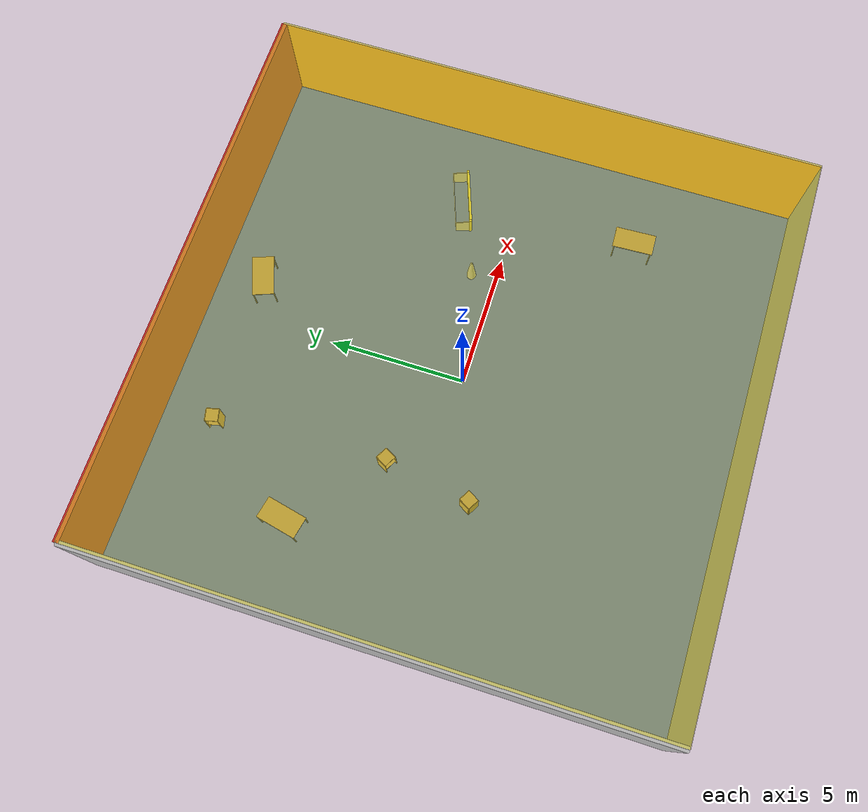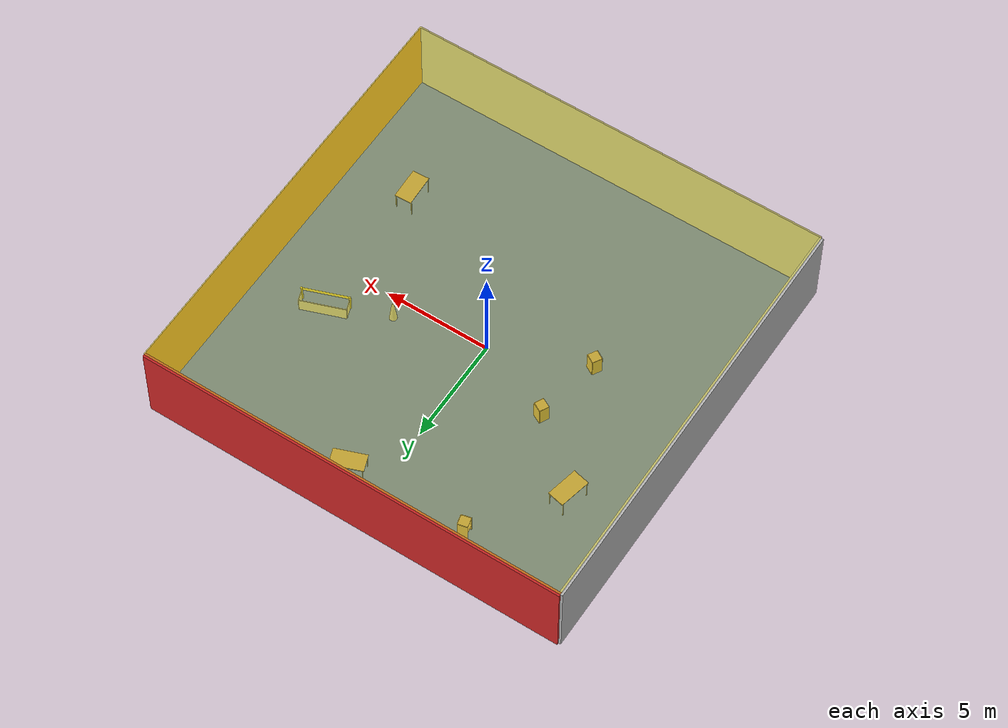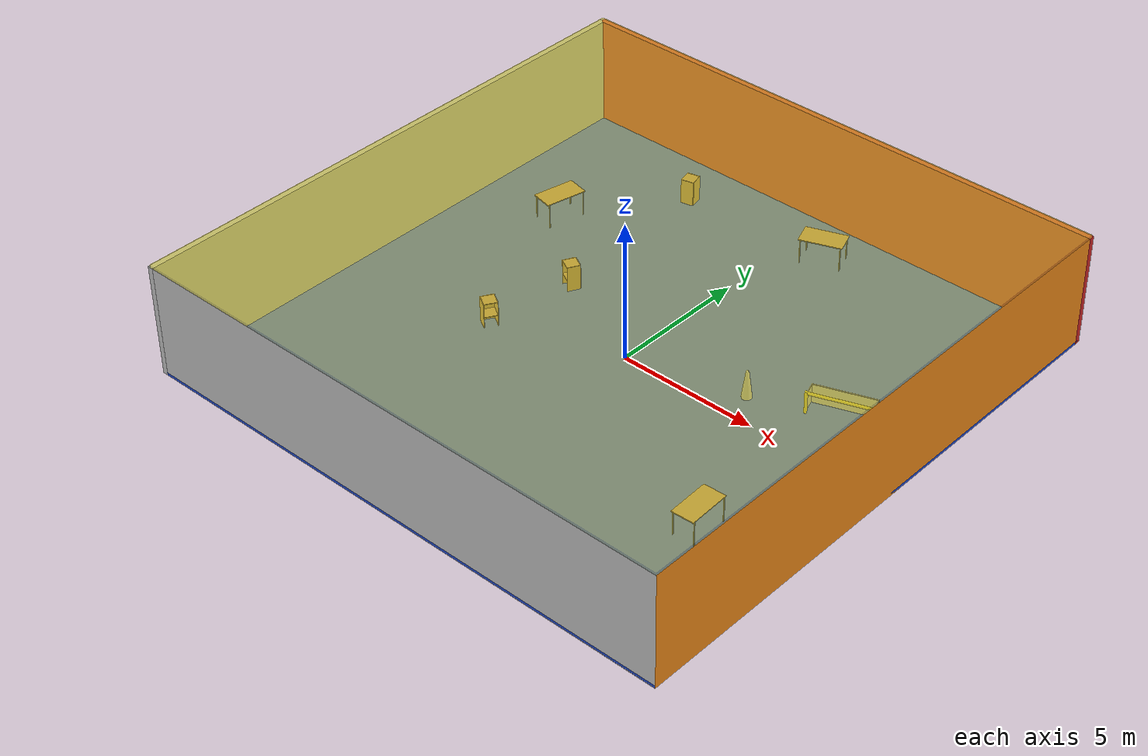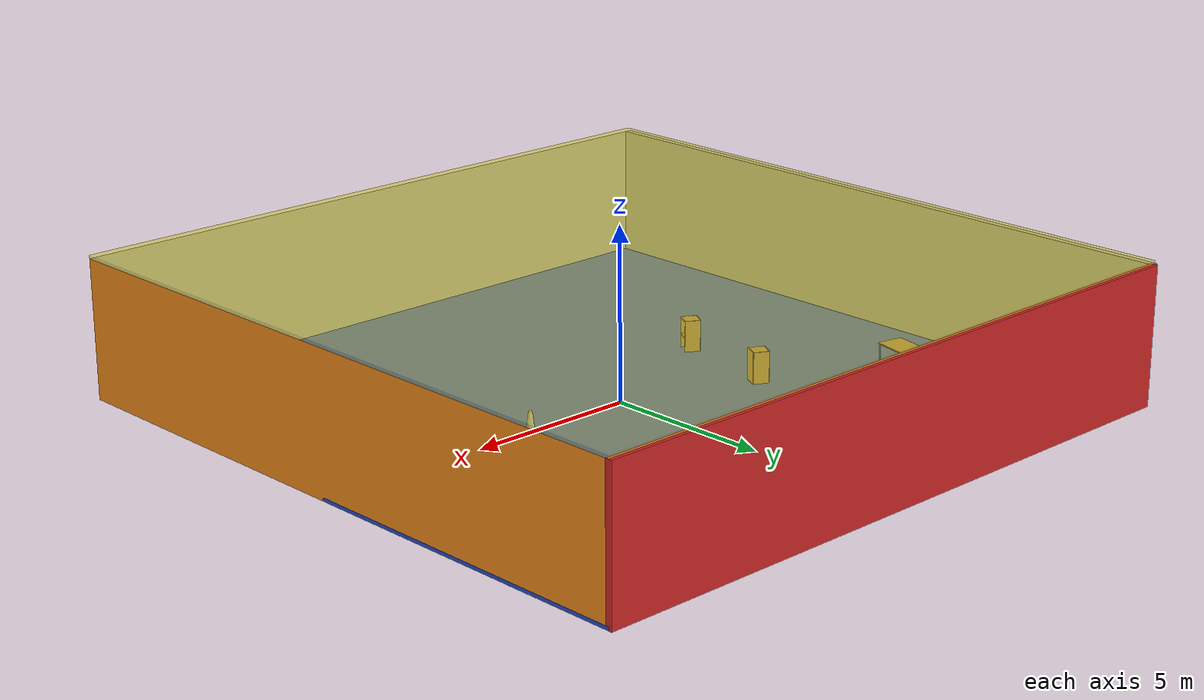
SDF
<sdf version="1.4">
 <world name="default">
  <physics type="ode">
   <max_step_size>0.001</max_step_size>
   <real_time_factor>1</real_time_factor>
   <real_time_update_rate>1000</real_time_update_rate>
   <gravity>0 0 -9.8</gravity>
  </physics>
  <scene><ambient>0.4 0.4 0.4 1</ambient><background>0.7 0.7 0.7 1</background><shadows>1</shadows></scene>
  <model name="Surrounding">
   <static>1</static>
   <link name="Ceiling">
    <collision name="Ceiling_Collision"><geometry><box><size>20 20 0.1</size></box></geometry></collision>
    <visual name="Ceiling_Visual">
     <geometry><box><size>20 20 0.1</size></box></geometry>
     <material>
      <script>
       <uri>file://media/materials/scripts/gazebo.material</uri>
       <name>Gazebo/YellowTransparent</name>
      </script>
     </material>
    </visual>
    <pose>0 0 4.05 0 0 0</pose>
   </link>
   <link name="Wall_South">
    <collision name="Wall_South_Collision">
     <geometry><box><size>20 0 4</size></box></geometry>
     <pose>0 0 2 0 -0 0</pose>
    </collision>
    <visual name="Wall_South_Visual">
     <pose>0 0 2 0 -0 0</pose>
     <geometry><box><size>20 0 4</size></box></geometry>
     <material>
      <script><uri>file://media/materials/scripts/gazebo.material</uri><name>Gazebo/LightOn</name></script>
     </material>
    </visual>
    <velocity_decay><linear>0</linear><angular>0</angular></velocity_decay>
    <pose>0 -10 0 0 -0 0</pose>
   </link>
   <link name="Wall_East">
    <collision name="Wall_21_Collision">
     <geometry><box><size>20 0 4</size></box></geometry>
     <pose>0 0 2 0 -0 0</pose>
    </collision>
    <visual name="Wall_21_Visual">
     <pose>0 0 2 0 -0 0</pose>
     <geometry><box><size>20 0 4</size></box></geometry>
     <material>
      <script><uri>file://media/materials/scripts/gazebo.material</uri><name>Gazebo/Orange</name></script>
     </material>
    </visual>
    <velocity_decay><linear>0</linear><angular>0</angular></velocity_decay>
    <pose>10 0 0 0 -0 1.5708</pose>
   </link>
   <link name="Wall_North">
    <collision name="Wall_22_Collision">
     <geometry><box><size>20 0.2 4</size></box></geometry>
     <pose>0 0 2 0 -0 0</pose>
    </collision>
    <visual name="Wall_22_Visual">
     <pose>0 0 2 0 -0 0</pose>
     <geometry><box><size>20 0.2 4</size></box></geometry>
     <material>
      <script><uri>file://media/materials/scripts/gazebo.material</uri><name>Gazebo/RedBright</name></script>
     </material>
    </visual>
    <velocity_decay><linear>0</linear><angular>0</angular></velocity_decay>
    <pose>0 10 0 0 -0 0</pose>
   </link>
   <link name="Wall_West">
    <collision name="Wall_23_Collision">
     <geometry><box><size>20 0.2 4</size></box></geometry>
     <pose>0 0 2 0 -0 0</pose>
    </collision>
    <visual name="Wall_23_Visual">
     <pose>0 0 2 0 -0 0</pose>
     <geometry><box><size>20 0.2 4</size></box></geometry>
     <material>
      <script><uri>file://media/materials/scripts/gazebo.material</uri><name>Gazebo/Pioneer2Body</name></script>
     </material>
    </visual>
    <velocity_decay><linear>0</linear><angular>0</angular></velocity_decay>
    <pose>-10 0 0 0 0 -1.5708</pose>
   </link>
   <link name="Ground_link">
    <collision name="collision">
     <pose>0 0 .05 0 -0 0</pose>
     <geometry><box><size>20 20 0.1</size></box></geometry>
    </collision>
    <visual name="visual">
     <pose>0 0 .05 0 -0 0</pose>
     <geometry><box><size>20 20 0.1</size></box></geometry>
     <material>
      <script><uri>file://media/materials/scripts/gazebo.material</uri><name>Gazebo/Blue</name></script>
     </material>
    </visual>
   </link>
   <static>1</static>
  </model>
  <spherical_coordinates>
   <surface_model>EARTH_WGS84</surface_model>
   <latitude_deg>0</latitude_deg>
   <longitude_deg>0</longitude_deg>
   <elevation>0</elevation>
   <heading_deg>0</heading_deg>
  </spherical_coordinates>
  <light name="lightball_0" type="diffuse">
   <diffuse>0.8 0.8 0.8 1</diffuse>
   <specular>0.2 0.2 0.2 1</specular>
   <attenuation>
    <range>100</range>
    <constant>0.7</constant>
    <linear>0.01</linear>
    <quadratic>0.001</quadratic>
   </attenuation>
   <direction>-0.5 0.1 -0.9</direction>
   <pose>-5.69399138864 -9.61940304723 3.29562941621 0 0 0</pose>
  </light>
  <light name="lightball_1" type="diffuse">
   <diffuse>0.8 0.8 0.8 1</diffuse>
   <specular>0.2 0.2 0.2 1</specular>
   <attenuation>
    <range>100</range>
    <constant>0.7</constant>
    <linear>0.01</linear>
    <quadratic>0.001</quadratic>
   </attenuation>
   <direction>-0.5 0.1 -0.9</direction>
   <pose>6.00967634269 0.635926703162 1.1480112802 0 0 0</pose>
  </light>
  <light name="lightball_2" type="diffuse">
   <diffuse>0.8 0.8 0.8 1</diffuse>
   <specular>0.2 0.2 0.2 1</specular>
   <attenuation>
    <range>100</range>
    <constant>0.7</constant>
    <linear>0.01</linear>
    <quadratic>0.001</quadratic>
   </attenuation>
   <direction>-0.5 0.1 -0.9</direction>
   <pose>1.46505966558 -8.92198010467 0.895344788208 0 0 0</pose>
  </light>
  <light name="lightball_3" type="diffuse">
   <diffuse>0.8 0.8 0.8 1</diffuse>
   <specular>0.2 0.2 0.2 1</specular>
   <attenuation>
    <range>100</range>
    <constant>0.7</constant>
    <linear>0.01</linear>
    <quadratic>0.001</quadratic>
   </attenuation>
   <direction>-0.5 0.1 -0.9</direction>
   <pose>-6.73969129981 5.29561619712 0.874007816221 0 0 0</pose>
  </light>
  <light name="lightball_4" type="diffuse">
   <diffuse>0.8 0.8 0.8 1</diffuse>
   <specular>0.2 0.2 0.2 1</specular>
   <attenuation>
    <range>100</range>
    <constant>0.7</constant>
    <linear>0.01</linear>
    <quadratic>0.001</quadratic>
   </attenuation>
   <direction>-0.5 0.1 -0.9</direction>
   <pose>9.97747905079 4.45161677916 2.71502842926 0 0 0</pose>
  </light>
  <light name="lightball_5" type="diffuse">
   <diffuse>0.8 0.8 0.8 1</diffuse>
   <specular>0.2 0.2 0.2 1</specular>
   <attenuation>
    <range>100</range>
    <constant>0.7</constant>
    <linear>0.01</linear>
    <quadratic>0.001</quadratic>
   </attenuation>
   <direction>-0.5 0.1 -0.9</direction>
   <pose>-0.0362271822549 -4.71947806321 3.7027303897 0 0 0</pose>
  </light>
  <light name="lightball_6" type="diffuse">
   <diffuse>0.8 0.8 0.8 1</diffuse>
   <specular>0.2 0.2 0.2 1</specular>
   <attenuation>
    <range>100</range>
    <constant>0.7</constant>
    <linear>0.01</linear>
    <quadratic>0.001</quadratic>
   </attenuation>
   <direction>-0.5 0.1 -0.9</direction>
   <pose>7.07941222251 -8.62828018546 0.826588001256 0 0 0</pose>
  </light>
  <light name="lightball_7" type="diffuse">
   <diffuse>0.8 0.8 0.8 1</diffuse>
   <specular>0.2 0.2 0.2 1</specular>
   <attenuation>
    <range>100</range>
    <constant>0.7</constant>
    <linear>0.01</linear>
    <quadratic>0.001</quadratic>
   </attenuation>
   <direction>-0.5 0.1 -0.9</direction>
   <pose>1.44192087279 -6.73361785336 2.18915875654 0 0 0</pose>
  </light>
  <include><uri>model://table</uri><pose>-6.79533905668 4.30885675126 0 0 0 1.35640288667</pose></include>
  <include><uri>model://cabinet</uri><pose>-4.31912819359 -1.58760645879 0 0 0 2.61257628709</pose></include>
  <include><uri>model://cabinet</uri><pose>-3.75366356003 1.59500477156 0 0 0 1.08573344807</pose></include>
  <include><uri>model://cabinet</uri><pose>-4.13279032626 7.9072968132 0 0 0 0.226156845485</pose></include>
  <include><uri>model://table</uri><pose>1.39662226611 8.11109080499 0 0 0 0.35415140033</pose></include>
  <include>
   <uri>model://construction_cone</uri>
   <pose>4.09529403143 0.927436878269 0 0 0 0.572403895613</pose>
  </include>
  <include><uri>model://table</uri><pose>6.83679432483 -4.55739523089 0 0 0 1.61234118696</pose></include>
  <include>
   <uri>model://robocup_3Dsim_goal</uri>
   <pose>6.86916511181 1.87380436479 0 0 0 1.9170053169</pose>
  </include>
 </world>
</sdf>

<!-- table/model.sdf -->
<sdf version="1.5">
  <model name="table">
    <static>true</static>
    <link name="link">
      <collision name="surface">
        <pose>0 0 1.0 0 0 0</pose>
        <geometry>
          <box>
            <size>1.5 0.8 0.03</size>
          </box>
        </geometry>
        <surface>
          <friction>
            <ode>
              <mu>0.6</mu>
              <mu2>0.6</mu2>
            </ode>
          </friction>
        </surface>
      </collision>
      <visual name="visual1">
        <pose>0 0 1.0 0 0 0</pose>
        <geometry>
          <box>
            <size>1.5 0.8 0.03</size>
          </box>
        </geometry>
        <material>
          <script>
            <uri>model://media/materials/scripts/gazebo.material</uri>
            <name>Gazebo/Wood</name>
          </script>
        </material>
      </visual>
      <collision name="front_left_leg">
        <pose>0.68 0.38 0.5 0 0 0</pose>
        <geometry>
          <cylinder>
            <radius>0.02</radius>
            <length>1.0</length>
          </cylinder>
        </geometry>
      </collision>
      <visual name="front_left_leg">
        <pose>0.68 0.38 0.5 0 0 0</pose>
        <geometry>
          <cylinder>
            <radius>0.02</radius>
            <length>1.0</length>
          </cylinder>
        </geometry>
        <material>
          <script>
            <uri>model://media/materials/scripts/gazebo.material</uri>
            <name>Gazebo/Grey</name>
          </script>
        </material>
      </visual>
      <collision name="front_right_leg">
        <pose>0.68 -0.38 0.5 0 0 0</pose>
        <geometry>
          <cylinder>
            <radius>0.02</radius>
            <length>1.0</length>
          </cylinder>
        </geometry>
      </collision>
      <visual name="front_right_leg">
        <pose>0.68 -0.38 0.5 0 0 0</pose>
        <geometry>
          <cylinder>
            <radius>0.02</radius>
            <length>1.0</length>
          </cylinder>
        </geometry>
        <material>
          <script>
            <uri>model://media/materials/scripts/gazebo.material</uri>
            <name>Gazebo/Grey</name>
          </script>
        </material>
      </visual>
      <collision name="back_right_leg">
        <pose>-0.68 -0.38 0.5 0 0 0</pose>
        <geometry>
          <cylinder>
            <radius>0.02</radius>
            <length>1.0</length>
          </cylinder>
        </geometry>
      </collision>
      <visual name="back_right_leg">
        <pose>-0.68 -0.38 0.5 0 0 0</pose>
        <geometry>
          <cylinder>
            <radius>0.02</radius>
            <length>1.0</length>
          </cylinder>
        </geometry>
        <material>
          <script>
            <uri>model://media/materials/scripts/gazebo.material</uri>
            <name>Gazebo/Grey</name>
          </script>
        </material>
      </visual>
      <collision name="back_left_leg">
        <pose>-0.68 0.38 0.5 0 0 0</pose>
        <geometry>
          <cylinder>
            <radius>0.02</radius>
            <length>1.0</length>
          </cylinder>
        </geometry>
      </collision>
      <visual name="back_left_leg">
        <pose>-0.68 0.38 0.5 0 0 0</pose>
        <geometry>
          <cylinder>
            <radius>0.02</radius>
            <length>1.0</length>
          </cylinder>
        </geometry>
        <material>
          <script>
            <uri>model://media/materials/scripts/gazebo.material</uri>
            <name>Gazebo/Grey</name>
          </script>
        </material>
      </visual>
    </link>
  </model>
</sdf>

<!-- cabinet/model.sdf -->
<sdf version="1.5">
  <model name="cabinet">
    <static>true</static>
    <link name="cabinet_bottom_plate">
      <inertial>
        <pose>0 0 -1 0 0 0</pose>
        <inertia>
          <ixx>2.050000</ixx>
          <ixy>0</ixy>
          <ixz>0</ixz>
          <iyy>2.050000</iyy>
          <iyz>0</iyz>
          <izz>2.050000</izz>
        </inertia>
        <mass>25.000000</mass>
      </inertial>
      <collision name="cabinet_bottom_plate_geom">
        <pose>0 0 0.010000 0 0 0</pose>
        <geometry>
          <box>
            <size>0.450000 0.450000 0.020000</size>
          </box>
        </geometry>
      </collision>
      <visual name="cabinet_bottom_plate_geom_visual">
        <pose>0 0 0.010000 0 0 0</pose>
        <geometry>
          <box>
            <size>0.450000 0.450000 0.020000</size>
          </box>
        </geometry>
        <material>
          <script>
            <uri>model://media/materials/scripts/gazebo.material</uri>
            <name>Gazebo/Wood</name>
          </script>
        </material>
      </visual>
      <collision name="cabinet_bottom_plate_geom_cabinet_back_plate">
        <pose>0.235000 0 0.510000 0 0 0</pose>
        <geometry>
          <box>
            <size>0.020000 0.450000 1.020000</size>
          </box>
        </geometry>
      </collision>
      <visual name="cabinet_bottom_plate_geom_cabinet_back_plate_visual">
        <pose>0.235000 0 0.510000 0 0 0</pose>
        <geometry>
          <box>
            <size>0.020000 0.450000 1.020000</size>
          </box>
        </geometry>
        <material>
          <script>
            <uri>model://media/materials/scripts/gazebo.material</uri>
            <name>Gazebo/Wood</name>
          </script>
        </material>
      </visual>
      <collision name="cabinet_bottom_plate_geom_cabinet_left_plate">
        <pose>0 0.235000 0.510000 0 0 0</pose>
        <geometry>
          <box>
            <size>0.450000 0.020000 1.020000</size>
          </box>
        </geometry>
      </collision>
      <visual name="cabinet_bottom_plate_geom_cabinet_left_plate_visual">
        <pose>0 0.235000 0.510000 0 0 0</pose>
        <geometry>
          <box>
            <size>0.450000 0.020000 1.020000</size>
          </box>
        </geometry>
        <material>
          <script>
            <uri>model://media/materials/scripts/gazebo.material</uri>
            <name>Gazebo/Wood</name>
          </script>
        </material>
      </visual>
      <collision name="cabinet_bottom_plate_geom_cabinet_middle_plate">
        <pose>0 0 0.510000 0 0 0</pose>
        <geometry>
          <box>
            <size>0.450000 0.450000 0.020000</size>
          </box>
        </geometry>
      </collision>
      <visual name="cabinet_bottom_plate_geom_cabinet_middle_plate_visual">
        <pose>0 0 0.510000 0 0 0</pose>
        <geometry>
          <box>
            <size>0.450000 0.450000 0.020000</size>
          </box>
        </geometry>
        <material>
          <script>
            <uri>model://media/materials/scripts/gazebo.material</uri>
            <name>Gazebo/Wood</name>
          </script>
        </material>
      </visual>
      <collision name="cabinet_bottom_plate_geom_cabinet_right_plate">
        <pose>0 -0.235000 0.510000 0 0 0</pose>
        <geometry>
          <box>
            <size>0.450000 0.020000 1.020000</size>
          </box>
        </geometry>
      </collision>
      <visual name="cabinet_bottom_plate_geom_cabinet_right_plate_visual">
        <pose>0 -0.235000 0.510000 0 0 0</pose>
        <geometry>
          <box>
            <size>0.450000 0.020000 1.020000</size>
          </box>
        </geometry>
        <material>
          <script>
            <uri>model://media/materials/scripts/gazebo.material</uri>
            <name>Gazebo/Wood</name>
          </script>
        </material>
      </visual>
      <collision name="cabinet_bottom_plate_geom_cabinet_top_plate">
        <pose>0 0 1.010000 0 0 0</pose>
        <geometry>
          <box>
            <size>0.450000 0.450000 0.020000</size>
          </box>
        </geometry>
      </collision>
      <visual name="cabinet_bottom_plate_geom_cabinet_top_plate_visual">
        <pose>0 0 1.010000 0 0 0</pose>
        <geometry>
          <box>
            <size>0.450000 0.450000 0.020000</size>
          </box>
        </geometry>
        <material>
          <script>
            <uri>model://media/materials/scripts/gazebo.material</uri>
            <name>Gazebo/Wood</name>
          </script>
        </material>
      </visual>
    </link>
  </model>
</sdf>

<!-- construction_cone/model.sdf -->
<sdf version="1.5">
  <model name="Construction Cone">
    <link name="link">
      <collision name="collision">
        <geometry>
          <mesh>
            <scale>10 10 10</scale>
            <uri>file://isr-testbed/construction_cone/meshes/construction_cone.dae</uri>
          </mesh>
        </geometry>
      </collision>
      <visual name="visual">
        <geometry>
          <mesh>
            <scale>10 10 10</scale>
            <uri>file://isr-testbed/construction_cone/meshes/construction_cone.dae</uri>
          </mesh>
        </geometry>
      </visual>
    </link>
  </model>
</sdf>

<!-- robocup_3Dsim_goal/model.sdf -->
<sdf version="1.5">
  <model name="robocup_3d_goal">
    <static>true</static>
    <link name="left_post">
      <pose>0 1.05 0.45 0 0 0</pose>
      <collision name="collision">
        <geometry>
          <cylinder>
            <radius>0.05</radius>
            <length>0.9</length>
          </cylinder>
        </geometry>
      </collision>
      <visual name="visual">
        <geometry>
          <cylinder>
            <radius>0.05</radius>
            <length>0.9</length>
          </cylinder>
        </geometry>
        <material>
          <script>
            <uri>file://media/materials/scripts/gazebo.material</uri>
            <name>Gazebo/ZincYellow</name>
          </script>
        </material>
      </visual>
    </link>
    <link name="left_support_horiz_lower">
      <pose>0.30 1.05 0.01 0 0 0</pose>
      <collision name="collision">
        <geometry>
          <box>
            <size>0.50 0.02 0.02</size>
          </box>
        </geometry>
      </collision>
      <visual name="visual">
        <geometry>
          <box>
            <size>0.50 0.02 0.02</size>
          </box>
        </geometry>
        <material>
          <script>
            <uri>file://media/materials/scripts/gazebo.material</uri>
            <name>Gazebo/White</name>
          </script>
        </material>
      </visual>
    </link>
    <link name="left_support_horiz_upper">
      <pose>0.30 1.05 0.79 0 0 0</pose>
      <collision name="collision">
        <geometry>
          <box>
            <size>0.50 0.02 0.02</size>
          </box>
        </geometry>
      </collision>
      <visual name="visual">
        <geometry>
          <box>
            <size>0.50 0.02 0.02</size>
          </box>
        </geometry>
        <material>
          <script>
            <uri>file://media/materials/scripts/gazebo.material</uri>
            <name>Gazebo/White</name>
          </script>
        </material>
      </visual>
    </link>
    <link name="left_support_vertical">
      <pose>0.56 1.05 0.4 0 1.5708 0</pose>
      <collision name="collision">
        <geometry>
          <box>
            <size>0.80 0.02 0.02</size>
          </box>
        </geometry>
      </collision>
      <visual name="visual">
        <geometry>
          <box>
            <size>0.80 0.02 0.02</size>
          </box>
        </geometry>
        <material>
          <script>
            <uri>file://media/materials/scripts/gazebo.material</uri>
            <name>Gazebo/White</name>
          </script>
        </material>
      </visual>
    </link>
    <link name="right_support_horiz_lower">
      <pose>0.30 -1.05 0.01 0 0 0</pose>
      <collision name="collision">
        <geometry>
          <box>
            <size>0.50 0.02 0.02</size>
          </box>
        </geometry>
      </collision>
      <visual name="visual">
        <geometry>
          <box>
            <size>0.50 0.02 0.02</size>
          </box>
        </geometry>
        <material>
          <script>
            <uri>file://media/materials/scripts/gazebo.material</uri>
            <name>Gazebo/White</name>
          </script>
        </material>
      </visual>
    </link>
    <link name="right_support_horiz_upper">
      <pose>0.30 -1.05 0.79 0 0 0</pose>
      <collision name="collision">
        <geometry>
          <box>
            <size>0.50 0.02 0.02</size>
          </box>
        </geometry>
      </collision>
      <visual name="visual">
        <geometry>
          <box>
            <size>0.50 0.02 0.02</size>
          </box>
        </geometry>
        <material>
          <script>
            <uri>file://media/materials/scripts/gazebo.material</uri>
            <name>Gazebo/White</name>
          </script>
        </material>
      </visual>
    </link>
    <link name="right_support_vertical">
      <pose>0.56 -1.05 0.4 0 1.5708 0</pose>
      <collision name="collision">
        <geometry>
          <box>
            <size>0.80 0.02 0.02</size>
          </box>
        </geometry>
      </collision>
      <visual name="visual">
        <geometry>
          <box>
            <size>0.80 0.02 0.02</size>
          </box>
        </geometry>
        <material>
          <script>
            <uri>file://media/materials/scripts/gazebo.material</uri>
            <name>Gazebo/White</name>
          </script>
        </material>
      </visual>
    </link>
    <link name="center_support_horiz_lower">
      <pose>0.56 0 0.01 0 1.5708 0</pose>
      <collision name="collision">
        <geometry>
          <box>
            <size>0.02 2.08 0.02</size>
          </box>
        </geometry>
      </collision>
      <visual name="visual">
        <geometry>
          <box>
            <size>0.02 2.08 0.02</size>
          </box>
        </geometry>
        <material>
          <script>
            <uri>file://media/materials/scripts/gazebo.material</uri>
            <name>Gazebo/White</name>
          </script>
        </material>
      </visual>
    </link>
    <link name="center_support_horiz_upper">
      <pose>0.56 0 0.79 0 1.5708 0</pose>
      <collision name="collision">
        <geometry>
          <box>
            <size>0.02 2.08 0.02</size>
          </box>
        </geometry>
      </collision>
      <visual name="visual">
        <geometry>
          <box>
            <size>0.02 2.08 0.02</size>
          </box>
        </geometry>
        <material>
          <script>
            <uri>file://media/materials/scripts/gazebo.material</uri>
            <name>Gazebo/White</name>
          </script>
        </material>
      </visual>
    </link>
    <link name="right_post">
      <pose>0 -1.05 0.45 0 0 0</pose>
      <collision name="collision">
        <geometry>
          <cylinder>
            <radius>0.05</radius>
            <length>0.9</length>
          </cylinder>
        </geometry>
      </collision>
      <visual name="visual">
        <geometry>
          <cylinder>
            <radius>0.05</radius>
            <length>0.9</length>
          </cylinder>
        </geometry>
        <material>
          <script>
            <uri>file://media/materials/scripts/gazebo.material</uri>
            <name>Gazebo/ZincYellow</name>
          </script>
        </material>
      </visual>
    </link>
    <link name="crossbar">
      <pose>0 0 0.85 1.57 1.57 0</pose>
      <collision name="collision">
        <geometry>
          <cylinder>
            <radius>0.05</radius>
            <length>2.0</length>
          </cylinder>
        </geometry>
      </collision>
      <visual name="visual">
        <geometry>
          <cylinder>
            <radius>0.05</radius>
            <length>2.0</length>
          </cylinder>
        </geometry>
        <material>
          <script>
            <uri>file://media/materials/scripts/gazebo.material</uri>
            <name>Gazebo/ZincYellow</name>
          </script>
        </material>
      </visual>
    </link>
    <link name="center_net">
      <pose>0.56 0 0.40 0 0 0</pose>
      <collision name="collision">
        <geometry>
          <box>
            <size>0.01 2.1 0.80</size>
          </box>
        </geometry>
      </collision>
      <visual name="visual">
        <geometry>
          <box>
            <size>0.01 2.1 0.80</size>
          </box>
        </geometry>
        <material>
          <script>
            <uri>model://../model_source/models/robocup09_spl_field/materials/scripts/</uri>
            <uri>model://../model_source/models/robocup09_spl_field/materials/textures/</uri>
            <name>RoboCup/Net</name>
          </script>
        </material>
      </visual>
    </link>
    <link name="left_net">
      <pose>0.30 1.05 0.40 0 0 0</pose>
      <collision name="collision">
        <geometry>
          <box>
            <size>0.50 0.01 0.76</size>
          </box>
        </geometry>
      </collision>
      <visual name="visual">
        <geometry>
          <box>
            <size>0.50 0.01 0.76</size>
          </box>
        </geometry>
        <material>
          <script>
            <uri>model://../model_source/models/robocup09_spl_field/materials/scripts/</uri>
            <uri>model://../model_source/models/robocup09_spl_field/materials/textures/</uri>
            <name>RoboCup/Net</name>
          </script>
        </material>
      </visual>
    </link>
    <link name="right_net">
      <pose>0.30 -1.05 0.40 0 0 0</pose>
      <collision name="collision">
        <geometry>
          <box>
            <size>0.50 0.01 0.76</size>
          </box>
        </geometry>
      </collision>
      <visual name="visual">
        <geometry>
          <box>
            <size>0.50 0.01 0.76</size>
          </box>
        </geometry>
        <material>
          <script>
            <uri>model://../model_source/models/robocup09_spl_field/materials/scripts/</uri>
            <uri>model://../model_source/models/robocup09_spl_field/materials/textures/</uri>
            <name>RoboCup/Net</name>
          </script>
        </material>
      </visual>
    </link>
  </model>
</sdf>
